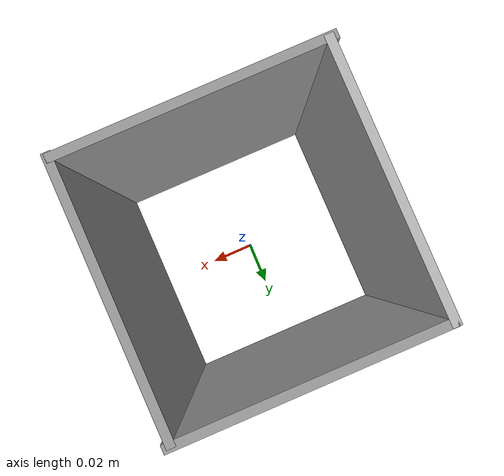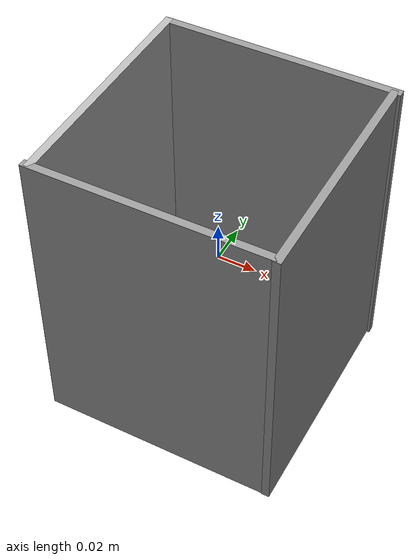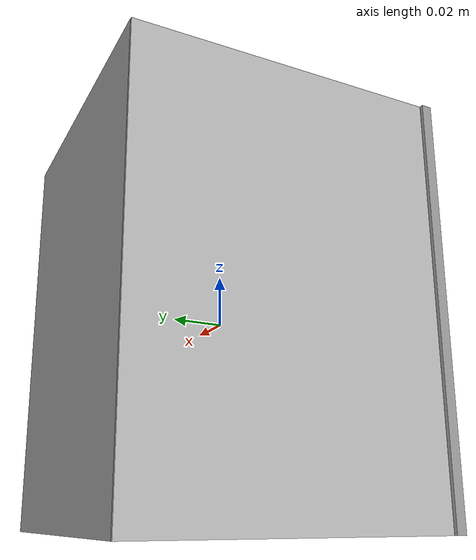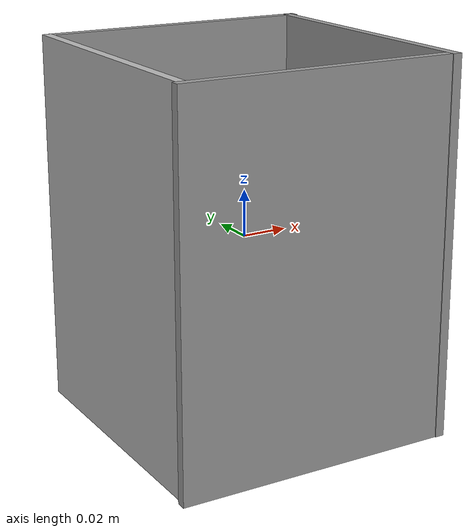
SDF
<?xml version='1.0'?>
<sdf version='1.6'>
  <model name='pick_box'>
    <link name='link_0'>
      <pose frame=''>-0.059403 0.000482 -0 0 -0 0</pose>
      <inertial>
        <mass>8.13488e-05</mass>
        <inertia>
          <ixx>2.80125e-07</ixx>
          <ixy>0</ixy>
          <ixz>0</ixz>
          <iyy>1.7813e-07</iyy>
          <iyz>0</iyz>
          <izz>1.02222e-07</izz>
        </inertia>
        <pose frame=''>0 0 0 0 -0 0</pose>
      </inertial>
      <visual name='visual'>
        <pose frame=''>0 0 0 0 -0 0</pose>
        <geometry>
          <box>
            <size>0.004084 0.12273 0.162036</size>
          </box>
        </geometry>
        <material>
          <script>
            <uri>model://pick_box/materials/scripts</uri>
            <uri>model://pick_box/materials/textures</uri>
            <name>pick_box/Diffuse</name>
          </script>
        </material>
        <cast_shadows>1</cast_shadows>
        <transparency>0</transparency>
      </visual>
      <collision name='collision'>
        <laser_retro>0</laser_retro>
        <max_contacts>10</max_contacts>
        <pose frame=''>0 0 0 0 -0 0</pose>
        <geometry>
          <box>
            <size>0.004084 0.12273 0.162036</size>
          </box>
        </geometry>
        <surface>
          <friction>
            <ode>
              <mu>1</mu>
              <mu2>1</mu2>
              <fdir1>0 0 0</fdir1>
              <slip1>0</slip1>
              <slip2>0</slip2>
            </ode>
            <torsional>
              <coefficient>1</coefficient>
              <patch_radius>0</patch_radius>
              <surface_radius>0</surface_radius>
              <use_patch_radius>1</use_patch_radius>
              <ode>
                <slip>0</slip>
              </ode>
            </torsional>
          </friction>
          <bounce>
            <restitution_coefficient>0</restitution_coefficient>
            <threshold>1e+06</threshold>
          </bounce>
          <contact>
            <collide_without_contact>0</collide_without_contact>
            <collide_without_contact_bitmask>1</collide_without_contact_bitmask>
            <collide_bitmask>1</collide_bitmask>
            <ode>
              <soft_cfm>0</soft_cfm>
              <soft_erp>0.2</soft_erp>
              <kp>1e+13</kp>
              <kd>1</kd>
              <max_vel>0.01</max_vel>
              <min_depth>0</min_depth>
            </ode>
            <bullet>
              <split_impulse>1</split_impulse>
              <split_impulse_penetration_threshold>-0.01</split_impulse_penetration_threshold>
              <soft_cfm>0</soft_cfm>
              <soft_erp>0.2</soft_erp>
              <kp>1e+13</kp>
              <kd>1</kd>
            </bullet>
          </contact>
        </surface>
      </collision>
    </link>
    <link name='link_0_clone'>
      <pose frame=''>0.058738 -0.000747 -0 0 -0 0</pose>
      <inertial>
        <mass>8.13488e-05</mass>
        <inertia>
          <ixx>2.80125e-07</ixx>
          <ixy>0</ixy>
          <ixz>0</ixz>
          <iyy>1.7813e-07</iyy>
          <iyz>0</iyz>
          <izz>1.02222e-07</izz>
        </inertia>
        <pose frame=''>0 0 0 0 -0 0</pose>
      </inertial>
      <visual name='visual'>
        <pose frame=''>0 0 0 0 -0 0</pose>
        <geometry>
          <box>
            <size>0.004084 0.12273 0.162036</size>
          </box>
        </geometry>
        <material>
          <lighting>1</lighting>
          <script>
            <uri>file://media/materials/scripts/gazebo.material</uri>
            <name>Gazebo/Grey</name>
          </script>
          <ambient>0.3 0.3 0.3 1</ambient>
          <diffuse>0.7 0.7 0.7 1</diffuse>
          <specular>0.01 0.01 0.01 1</specular>
          <emissive>0 0 0 1</emissive>
          <shader type='pixel'/>
        </material>
        <cast_shadows>1</cast_shadows>
        <transparency>0</transparency>
      </visual>
      <collision name='collision'>
        <laser_retro>0</laser_retro>
        <max_contacts>10</max_contacts>
        <pose frame=''>0 0 0 0 -0 0</pose>
        <geometry>
          <box>
            <size>0.004084 0.12273 0.162036</size>
          </box>
        </geometry>
        <surface>
          <friction>
            <ode>
              <mu>1</mu>
              <mu2>1</mu2>
              <fdir1>0 0 0</fdir1>
              <slip1>0</slip1>
              <slip2>0</slip2>
            </ode>
            <torsional>
              <coefficient>1</coefficient>
              <patch_radius>0</patch_radius>
              <surface_radius>0</surface_radius>
              <use_patch_radius>1</use_patch_radius>
              <ode>
                <slip>0</slip>
              </ode>
            </torsional>
          </friction>
          <bounce>
            <restitution_coefficient>0</restitution_coefficient>
            <threshold>1e+06</threshold>
          </bounce>
          <contact>
            <collide_without_contact>0</collide_without_contact>
            <collide_without_contact_bitmask>1</collide_without_contact_bitmask>
            <collide_bitmask>1</collide_bitmask>
            <ode>
              <soft_cfm>0</soft_cfm>
              <soft_erp>0.2</soft_erp>
              <kp>1e+13</kp>
              <kd>1</kd>
              <max_vel>0.01</max_vel>
              <min_depth>0</min_depth>
            </ode>
            <bullet>
              <split_impulse>1</split_impulse>
              <split_impulse_penetration_threshold>-0.01</split_impulse_penetration_threshold>
              <soft_cfm>0</soft_cfm>
              <soft_erp>0.2</soft_erp>
              <kp>1e+13</kp>
              <kd>1</kd>
            </bullet>
          </contact>
        </surface>
      </collision>
    </link>
    <link name='link_0_clone_0'>
      <pose frame=''>-0.001549 -0.059635 -0 0 -0 1.57</pose>
      <inertial>
        <mass>8.135e-05</mass>
        <inertia>
          <ixx>2.8e-07</ixx>
          <ixy>0</ixy>
          <ixz>0</ixz>
          <iyy>1.8e-07</iyy>
          <iyz>0</iyz>
          <izz>1e-07</izz>
        </inertia>
        <pose frame=''>0 0 0 0 -0 0</pose>
      </inertial>
      <gravity>1</gravity>
      <self_collide>0</self_collide>
      <kinematic>0</kinematic>
      <visual name='visual'>
        <pose frame=''>0 0 0 0 -0 0</pose>
        <geometry>
          <box>
            <size>0.004084 0.12273 0.162036</size>
          </box>
        </geometry>
        <material>
          <lighting>1</lighting>
          <script>
            <uri>file://media/materials/scripts/gazebo.material</uri>
            <name>Gazebo/Grey</name>
          </script>
          <ambient>0.3 0.3 0.3 1</ambient>
          <diffuse>0.7 0.7 0.7 1</diffuse>
          <specular>0.01 0.01 0.01 1</specular>
          <emissive>0 0 0 1</emissive>
          <shader type='vertex'>
            <normal_map>__default__</normal_map>
          </shader>
        </material>
        <cast_shadows>1</cast_shadows>
        <transparency>0</transparency>
      </visual>
      <collision name='collision'>
        <laser_retro>0</laser_retro>
        <max_contacts>10</max_contacts>
        <pose frame=''>0 0 0 0 -0 0</pose>
        <geometry>
          <box>
            <size>0.004084 0.12273 0.162036</size>
          </box>
        </geometry>
        <surface>
          <friction>
            <ode>
              <mu>1</mu>
              <mu2>1</mu2>
              <fdir1>0 0 0</fdir1>
              <slip1>0</slip1>
              <slip2>0</slip2>
            </ode>
            <torsional>
              <coefficient>1</coefficient>
              <patch_radius>0</patch_radius>
              <surface_radius>0</surface_radius>
              <use_patch_radius>1</use_patch_radius>
              <ode>
                <slip>0</slip>
              </ode>
            </torsional>
          </friction>
          <bounce>
            <restitution_coefficient>0</restitution_coefficient>
            <threshold>1e+06</threshold>
          </bounce>
          <contact>
            <collide_without_contact>0</collide_without_contact>
            <collide_without_contact_bitmask>1</collide_without_contact_bitmask>
            <collide_bitmask>1</collide_bitmask>
            <ode>
              <soft_cfm>0</soft_cfm>
              <soft_erp>0.2</soft_erp>
              <kp>1e+13</kp>
              <kd>1</kd>
              <max_vel>0.01</max_vel>
              <min_depth>0</min_depth>
            </ode>
            <bullet>
              <split_impulse>1</split_impulse>
              <split_impulse_penetration_threshold>-0.01</split_impulse_penetration_threshold>
              <soft_cfm>0</soft_cfm>
              <soft_erp>0.2</soft_erp>
              <kp>1e+13</kp>
              <kd>1</kd>
            </bullet>
          </contact>
        </surface>
      </collision>
    </link>
    <link name='link_0_clone_1'>
      <pose frame=''>0.000814 0.059901 -0 0 -0 1.57</pose>
      <inertial>
        <mass>8.135e-05</mass>
        <inertia>
          <ixx>2.8e-07</ixx>
          <ixy>0</ixy>
          <ixz>0</ixz>
          <iyy>1.8e-07</iyy>
          <iyz>0</iyz>
          <izz>1e-07</izz>
        </inertia>
        <pose frame=''>0 0 0 0 -0 0</pose>
      </inertial>
      <gravity>1</gravity>
      <self_collide>0</self_collide>
      <kinematic>0</kinematic>
      <visual name='visual'>
        <pose frame=''>0 0 0 0 -0 0</pose>
        <geometry>
          <box>
            <size>0.004084 0.12273 0.162036</size>
          </box>
        </geometry>
        <material>
          <lighting>1</lighting>
          <script>
            <uri>file://media/materials/scripts/gazebo.material</uri>
            <name>Gazebo/Grey</name>
          </script>
          <ambient>0.3 0.3 0.3 1</ambient>
          <diffuse>0.7 0.7 0.7 1</diffuse>
          <specular>0.01 0.01 0.01 1</specular>
          <emissive>0 0 0 1</emissive>
          <shader type='vertex'>
            <normal_map>__default__</normal_map>
          </shader>
        </material>
        <cast_shadows>1</cast_shadows>
        <transparency>0</transparency>
      </visual>
      <collision name='collision'>
        <laser_retro>0</laser_retro>
        <max_contacts>10</max_contacts>
        <pose frame=''>0 0 0 0 -0 0</pose>
        <geometry>
          <box>
            <size>0.004084 0.12273 0.162036</size>
          </box>
        </geometry>
        <surface>
          <friction>
            <ode>
              <mu>1</mu>
              <mu2>1</mu2>
              <fdir1>0 0 0</fdir1>
              <slip1>0</slip1>
              <slip2>0</slip2>
            </ode>
            <torsional>
              <coefficient>1</coefficient>
              <patch_radius>0</patch_radius>
              <surface_radius>0</surface_radius>
              <use_patch_radius>1</use_patch_radius>
              <ode>
                <slip>0</slip>
              </ode>
            </torsional>
          </friction>
          <bounce>
            <restitution_coefficient>0</restitution_coefficient>
            <threshold>1e+06</threshold>
          </bounce>
          <contact>
            <collide_without_contact>0</collide_without_contact>
            <collide_without_contact_bitmask>1</collide_without_contact_bitmask>
            <collide_bitmask>1</collide_bitmask>
            <ode>
              <soft_cfm>0</soft_cfm>
              <soft_erp>0.2</soft_erp>
              <kp>1e+13</kp>
              <kd>1</kd>
              <max_vel>0.01</max_vel>
              <min_depth>0</min_depth>
            </ode>
            <bullet>
              <split_impulse>1</split_impulse>
              <split_impulse_penetration_threshold>-0.01</split_impulse_penetration_threshold>
              <soft_cfm>0</soft_cfm>
              <soft_erp>0.2</soft_erp>
              <kp>1e+13</kp>
              <kd>1</kd>
            </bullet>
          </contact>
        </surface>
      </collision>
    </link>
    <static>1</static>
    <allow_auto_disable>1</allow_auto_disable>
  </model>
</sdf>
